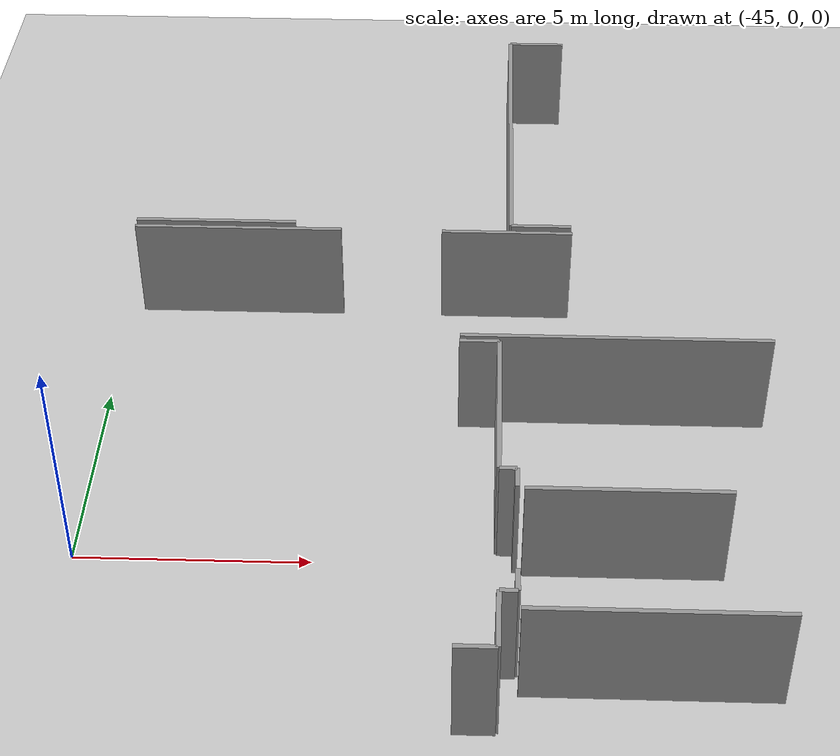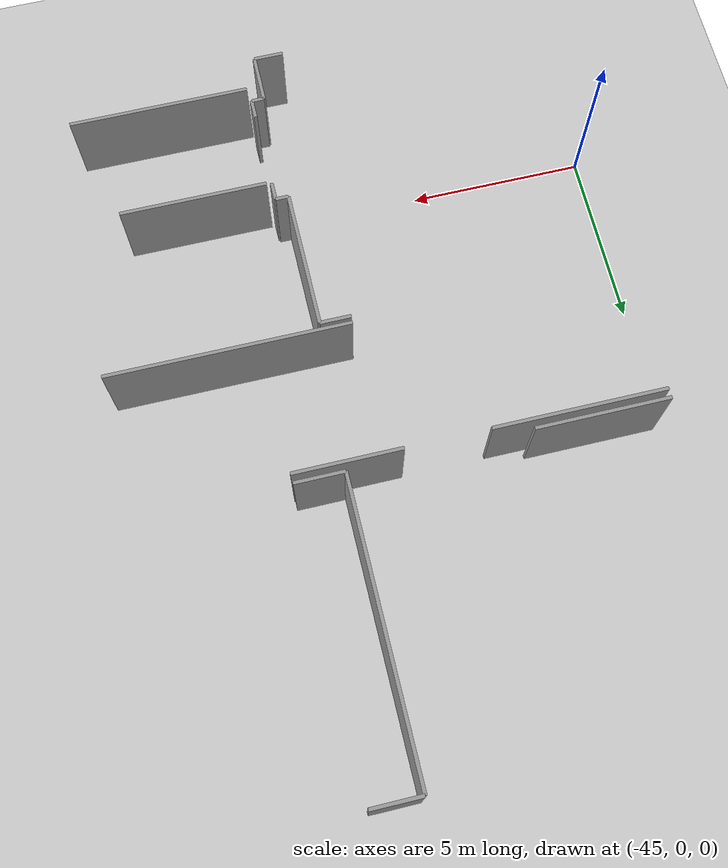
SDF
<sdf version="1.6">
 <world name="default">
  <model name="ground_plane">
   <static>1</static>
   <link name="link">
    <collision name="collision">
     <geometry><plane><normal>0 0 1</normal><size>100 100</size></plane></geometry>
     <surface><friction><ode><mu>100</mu><mu2>50</mu2></ode></friction></surface>
    </collision>
    <visual name="visual">
     <cast_shadows>0</cast_shadows>
     <geometry><plane><normal>0 0 1</normal><size>100 100</size></plane></geometry>
     <material>
      <script><uri>file://media/materials/scripts/gazebo.material</uri><name>Gazebo/Grey</name></script>
     </material>
    </visual>
   </link>
  </model>
  <model name="50041171">
   <static>1</static>
   <link name="Wall_5">
    <collision name="Wall_5_Collision">
     <geometry><box><size>3.03401524624 0.1 2.5</size></box></geometry>
     <pose>1.51700762312 0 1.25 0 0 0</pose>
    </collision>
    <visual name="Wall_5_Visual">
     <pose>1.51700762312 0 1.25 0 0 0</pose>
     <geometry><box><size>3.03401524624 0.1 2.5</size></box></geometry>
     <material>
      <script><uri>file://media/materials/scripts/gazebo.material</uri><name>Gazebo/Grey</name></script>
      <ambient>1 1 1 1</ambient>
     </material>
    </visual>
    <pose>31.1598443639 -8.49105346341 0 0 0 3.14159265359</pose>
   </link>
   <link name="Wall_6">
    <collision name="Wall_6_Collision">
     <geometry><box><size>4.83500161856 0.1 2.5</size></box></geometry>
     <pose>2.41750080928 0 1.25 0 0 0</pose>
    </collision>
    <visual name="Wall_6_Visual">
     <pose>2.41750080928 0 1.25 0 0 0</pose>
     <geometry><box><size>4.83500161856 0.1 2.5</size></box></geometry>
     <material>
      <script><uri>file://media/materials/scripts/gazebo.material</uri><name>Gazebo/Grey</name></script>
      <ambient>1 1 1 1</ambient>
     </material>
    </visual>
    <pose>25.7751655062 -8.49105346341 0 0 0 3.14159265359</pose>
   </link>
   <link name="Wall_12">
    <collision name="Wall_12_Collision">
     <geometry><box><size>6.82209118549 0.1 2.5</size></box></geometry>
     <pose>3.41104559274 0 1.25 0 0 0</pose>
    </collision>
    <visual name="Wall_12_Visual">
     <pose>3.41104559274 0 1.25 0 0 0</pose>
     <geometry><box><size>6.82209118549 0.1 2.5</size></box></geometry>
     <material>
      <script><uri>file://media/materials/scripts/gazebo.material</uri><name>Gazebo/Grey</name></script>
      <ambient>1 1 1 1</ambient>
     </material>
    </visual>
    <pose>28.6230775578 -12.2558982399 0 0 0 0.0</pose>
   </link>
   <link name="Wall_17">
    <collision name="Wall_17_Collision">
     <geometry><box><size>3.74631062477 0.1 2.5</size></box></geometry>
     <pose>1.87315531238 0 1.25 0 0 0</pose>
    </collision>
    <visual name="Wall_17_Visual">
     <pose>1.87315531238 0 1.25 0 0 0</pose>
     <geometry><box><size>3.74631062477 0.1 2.5</size></box></geometry>
     <material>
      <script><uri>file://media/materials/scripts/gazebo.material</uri><name>Gazebo/Grey</name></script>
      <ambient>1 1 1 1</ambient>
     </material>
    </visual>
    <pose>24.6860936736 -8.23017893073 0 0 0 3.14159265359</pose>
   </link>
   <link name="Wall_23">
    <collision name="Wall_23_Collision">
     <geometry><box><size>0.837083536976 0.1 2.5</size></box></geometry>
     <pose>0.418541768488 0 1.25 0 0 0</pose>
    </collision>
    <visual name="Wall_23_Visual">
     <pose>0.418541768488 0 1.25 0 0 0</pose>
     <geometry><box><size>0.837083536976 0.1 2.5</size></box></geometry>
     <material>
      <script><uri>file://media/materials/scripts/gazebo.material</uri><name>Gazebo/Grey</name></script>
      <ambient>1 1 1 1</ambient>
     </material>
    </visual>
    <pose>29.4874545374 -21.0527652066 0 0 0 3.14159265359</pose>
   </link>
   <link name="Wall_27">
    <collision name="Wall_27_Collision">
     <geometry><box><size>0.876436872806 0.1 2.5</size></box></geometry>
     <pose>0.438218436403 0 1.25 0 0 0</pose>
    </collision>
    <visual name="Wall_27_Visual">
     <pose>0.438218436403 0 1.25 0 0 0</pose>
     <geometry><box><size>0.876436872806 0.1 2.5</size></box></geometry>
     <material>
      <script><uri>file://media/materials/scripts/gazebo.material</uri><name>Gazebo/Grey</name></script>
      <ambient>1 1 1 1</ambient>
     </material>
    </visual>
    <pose>28.6086056859 -12.4446673056 0 0 0 0.0</pose>
   </link>
   <link name="Wall_28">
    <collision name="Wall_28_Collision">
     <geometry><box><size>3.95094797108 0.1 2.5</size></box></geometry>
     <pose>1.97547398554 0 1.25 0 0 0</pose>
    </collision>
    <visual name="Wall_28_Visual">
     <pose>1.97547398554 0 1.25 0 0 0</pose>
     <geometry><box><size>3.95094797108 0.1 2.5</size></box></geometry>
     <material>
      <script><uri>file://media/materials/scripts/gazebo.material</uri><name>Gazebo/Grey</name></script>
      <ambient>1 1 1 1</ambient>
     </material>
    </visual>
    <pose>29.4850425587 -12.4446673056 0 0 0 -1.57079632679</pose>
   </link>
   <link name="Wall_29">
    <collision name="Wall_29_Collision">
     <geometry><box><size>0.367255485665 0.1 2.5</size></box></geometry>
     <pose>0.183627742832 0 1.25 0 0 0</pose>
    </collision>
    <visual name="Wall_29_Visual">
     <pose>0.183627742832 0 1.25 0 0 0</pose>
     <geometry><box><size>0.367255485665 0.1 2.5</size></box></geometry>
     <material>
      <script><uri>file://media/materials/scripts/gazebo.material</uri><name>Gazebo/Grey</name></script>
      <ambient>1 1 1 1</ambient>
     </material>
    </visual>
    <pose>29.4850425587 -16.3956152767 0 0 0 0.0</pose>
   </link>
   <link name="Wall_30">
    <collision name="Wall_30_Collision">
     <geometry><box><size>0.517559839286 0.1 2.5</size></box></geometry>
     <pose>0.258779919643 0 1.25 0 0 0</pose>
    </collision>
    <visual name="Wall_30_Visual">
     <pose>0.258779919643 0 1.25 0 0 0</pose>
     <geometry><box><size>0.517559839286 0.1 2.5</size></box></geometry>
     <material>
      <script><uri>file://media/materials/scripts/gazebo.material</uri><name>Gazebo/Grey</name></script>
      <ambient>1 1 1 1</ambient>
     </material>
    </visual>
    <pose>29.8522980444 -16.3956152767 0 0 0 -1.57079632679</pose>
   </link>
   <link name="Wall_31">
    <collision name="Wall_31_Collision">
     <geometry><box><size>0.555389820181 0.1 2.5</size></box></geometry>
     <pose>0.27769491009 0 1.25 0 0 0</pose>
    </collision>
    <visual name="Wall_31_Visual">
     <pose>0.27769491009 0 1.25 0 0 0</pose>
     <geometry><box><size>0.555389820181 0.1 2.5</size></box></geometry>
     <material>
      <script><uri>file://media/materials/scripts/gazebo.material</uri><name>Gazebo/Grey</name></script>
      <ambient>1 1 1 1</ambient>
     </material>
    </visual>
    <pose>29.8522980444 -19.1174697075 0 0 0 -1.57079632679</pose>
   </link>
   <link name="Wall_32">
    <collision name="Wall_32_Collision">
     <geometry><box><size>0.356845893606 0.1 2.5</size></box></geometry>
     <pose>0.178422946803 0 1.25 0 0 0</pose>
    </collision>
    <visual name="Wall_32_Visual">
     <pose>0.178422946803 0 1.25 0 0 0</pose>
     <geometry><box><size>0.356845893606 0.1 2.5</size></box></geometry>
     <material>
      <script><uri>file://media/materials/scripts/gazebo.material</uri><name>Gazebo/Grey</name></script>
      <ambient>1 1 1 1</ambient>
     </material>
    </visual>
    <pose>29.8522980444 -19.6728595276 0 0 0 3.14159265359</pose>
   </link>
   <link name="Wall_33">
    <collision name="Wall_33_Collision">
     <geometry><box><size>1.3799288549 0.1 2.5</size></box></geometry>
     <pose>0.689964427451 0 1.25 0 0 0</pose>
    </collision>
    <visual name="Wall_33_Visual">
     <pose>0.689964427451 0 1.25 0 0 0</pose>
     <geometry><box><size>1.3799288549 0.1 2.5</size></box></geometry>
     <material>
      <script><uri>file://media/materials/scripts/gazebo.material</uri><name>Gazebo/Grey</name></script>
      <ambient>1 1 1 1</ambient>
     </material>
    </visual>
    <pose>29.4954521508 -19.6728595276 0 0 0 -1.57659203007</pose>
   </link>
   <link name="Wall_35">
    <collision name="Wall_35_Collision">
     <geometry><box><size>1.40224821799 0.1 2.5</size></box></geometry>
     <pose>0.701124108996 0 1.25 0 0 0</pose>
    </collision>
    <visual name="Wall_35_Visual">
     <pose>0.701124108996 0 1.25 0 0 0</pose>
     <geometry><box><size>1.40224821799 0.1 2.5</size></box></geometry>
     <material>
      <script><uri>file://media/materials/scripts/gazebo.material</uri><name>Gazebo/Grey</name></script>
      <ambient>1 1 1 1</ambient>
     </material>
    </visual>
    <pose>31.1460072232 -8.22852862955 0 0 0 3.14159265359</pose>
   </link>
   <link name="Wall_36">
    <collision name="Wall_36_Collision">
     <geometry><box><size>8.22319688728 0.1 2.5</size></box></geometry>
     <pose>4.11159844364 0 1.25 0 0 0</pose>
    </collision>
    <visual name="Wall_36_Visual">
     <pose>4.11159844364 0 1.25 0 0 0</pose>
     <geometry><box><size>8.22319688728 0.1 2.5</size></box></geometry>
     <material>
      <script><uri>file://media/materials/scripts/gazebo.material</uri><name>Gazebo/Grey</name></script>
      <ambient>1 1 1 1</ambient>
     </material>
    </visual>
    <pose>29.7437590052 -8.22852862955 0 0 0 1.57079632679</pose>
   </link>
   <link name="Wall_37">
    <collision name="Wall_37_Collision">
     <geometry><box><size>1.38396795877 0.1 2.5</size></box></geometry>
     <pose>0.691983979384 0 1.25 0 0 0</pose>
    </collision>
    <visual name="Wall_37_Visual">
     <pose>0.691983979384 0 1.25 0 0 0</pose>
     <geometry><box><size>1.38396795877 0.1 2.5</size></box></geometry>
     <material>
      <script><uri>file://media/materials/scripts/gazebo.material</uri><name>Gazebo/Grey</name></script>
      <ambient>1 1 1 1</ambient>
     </material>
    </visual>
    <pose>29.7437590052 -0.00533174227373 0 0 0 0.0</pose>
   </link>
   <link name="Wall_71">
    <collision name="Wall_71_Collision">
     <geometry><box><size>4.16827994186 0.1 2.5</size></box></geometry>
     <pose>2.08413997093 0 1.25 0 0 0</pose>
    </collision>
    <visual name="Wall_71_Visual">
     <pose>2.08413997093 0 1.25 0 0 0</pose>
     <geometry><box><size>4.16827994186 0.1 2.5</size></box></geometry>
     <material>
      <script><uri>file://media/materials/scripts/gazebo.material</uri><name>Gazebo/Grey</name></script>
      <ambient>1 1 1 1</ambient>
     </material>
    </visual>
    <pose>29.9960011933 -16.942753591 0 0 0 0.0</pose>
   </link>
   <link name="Wall_127">
    <collision name="Wall_127_Collision">
     <geometry><box><size>5.14817800402 0.1 2.5</size></box></geometry>
     <pose>2.57408900201 0 1.25 0 0 0</pose>
    </collision>
    <visual name="Wall_127_Visual">
     <pose>2.57408900201 0 1.25 0 0 0</pose>
     <geometry><box><size>5.14817800402 0.1 2.5</size></box></geometry>
     <material>
      <script><uri>file://media/materials/scripts/gazebo.material</uri><name>Gazebo/Grey</name></script>
      <ambient>1 1 1 1</ambient>
     </material>
    </visual>
    <pose>29.9106933169 -20.1016839419 0 0 0 0.0</pose>
   </link>
   <pose>-65.65 16.7602709033 0 0 0 0</pose>
  </model>
 </world>
</sdf>
